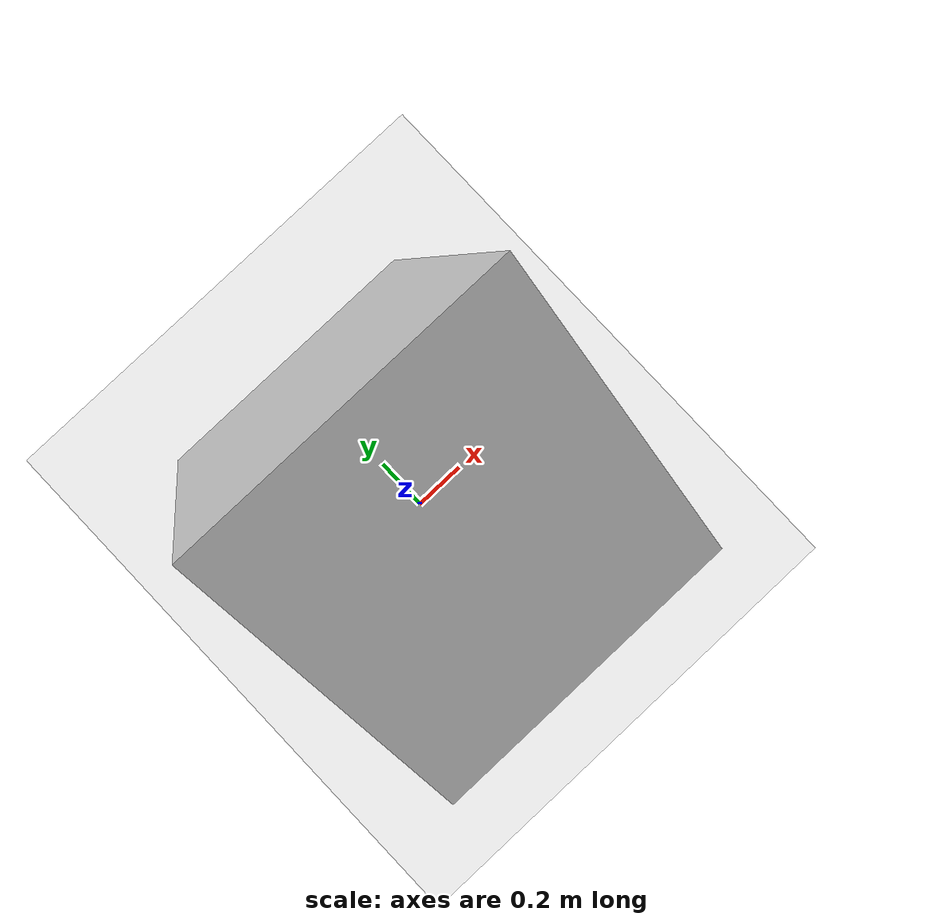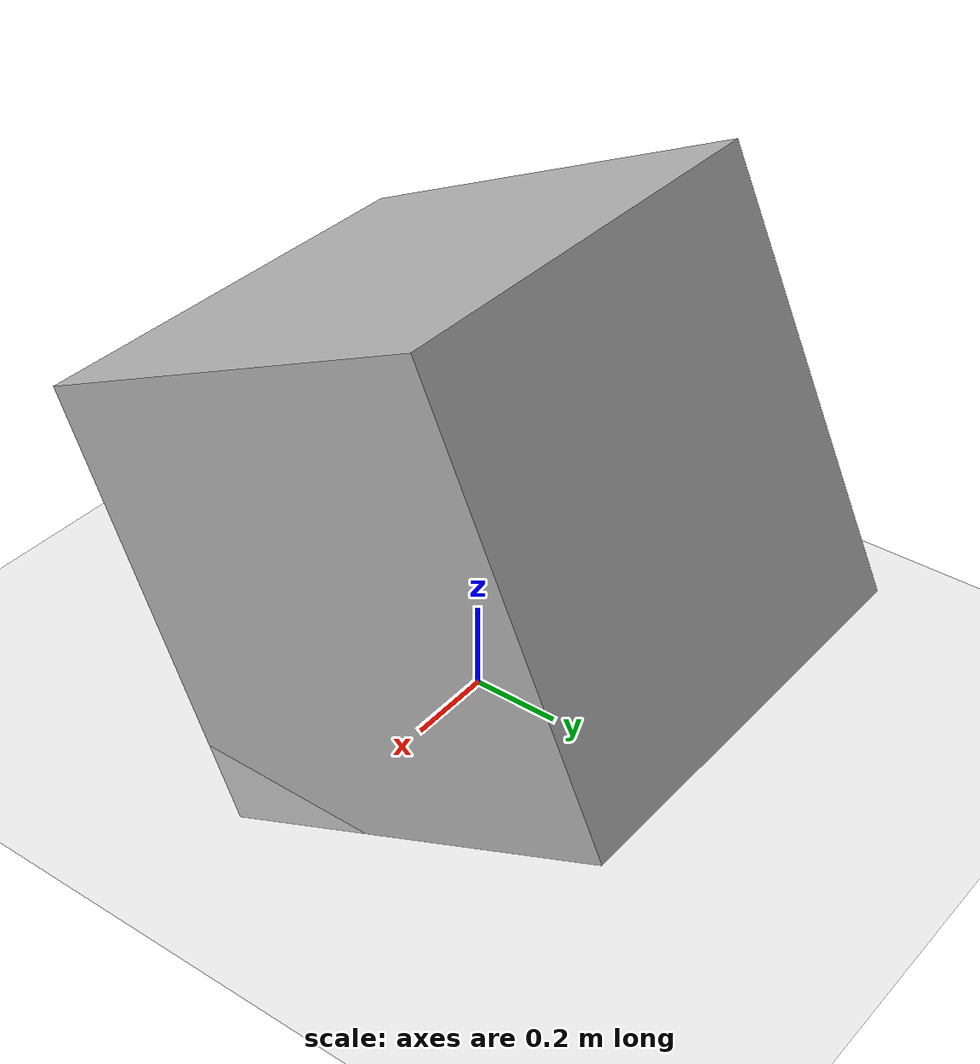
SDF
<?xml version="1.0"?>
<sdf version="1.4">
  <world name="default">

    <!-- Ground Plane -->
    <include>
      <uri>model://ground_plane</uri>
    </include>

    <include>
      <uri>model://sun</uri>
    </include>

    <model name="box">
      <pose>0 0 0.5 2.0 0 0</pose>
      <link name="link">
        <collision name="collision">
          <geometry>
            <box>
              <size>1 1 1</size>
            </box>
          </geometry>
        </collision>

        <visual name="visual">
          <geometry>
            <box>
              <size>1 1 1</size>
            </box>
          </geometry>
        </visual>
      </link>
      <!-- Specify that this model will use the model_push plugin -->
      <!-- TODO: Lookup how naming works and how it knows where to find the files -->
      <plugin name="model_push" filename="libmodel_push.so"/>
    </model>
  </world>
</sdf>
